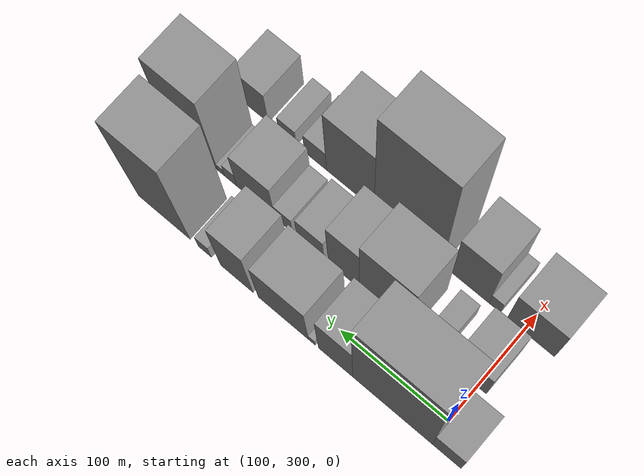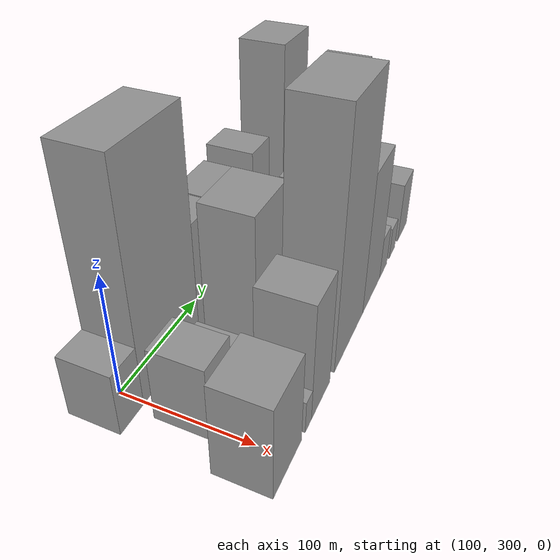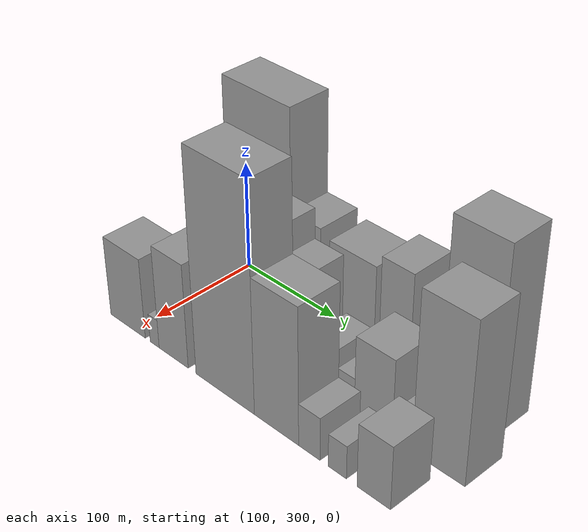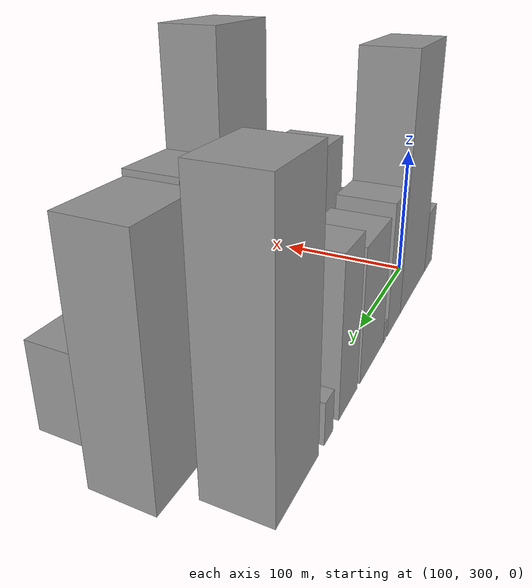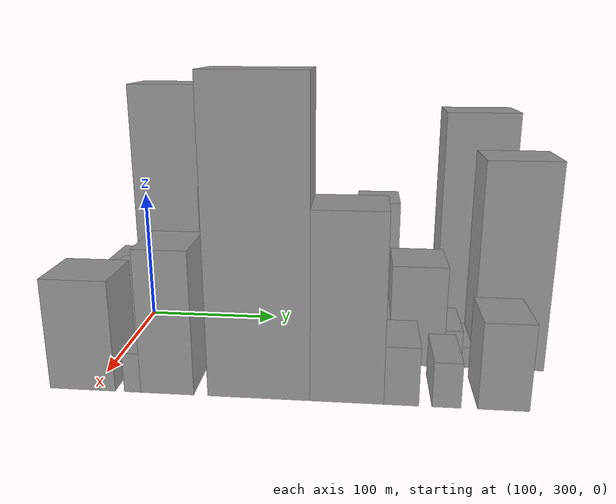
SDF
<sdf version="1.6">
 <world name="default">
  <model name="building_26">
   <static>1</static>
   <pose>100.0000 285.0551 0 0.000000 0.000000 0.000000</pose>
   <link name="link">
    <pose>0 0 25.50 0 0 0</pose>
    <collision name="collision"><geometry><box><size>40.0000 25.9128 51.0000</size></box></geometry></collision>
    <visual name="visual">
     <cast_shadows>0</cast_shadows>
     <geometry><box><size>40.0000 25.9128 51.0000</size></box></geometry>
     <material>
      <script>
       <uri>model://grey_wall/materials/scripts</uri>
       <uri>model://grey_wall/materials/textures</uri>
       <name>vrc/grey_wall</name>
      </script>
     </material>
    </visual>
   </link>
  </model>
  <model name="building_27">
   <static>1</static>
   <pose>100.0000 334.7470 0 0.000000 0.000000 0.000000</pose>
   <link name="link">
    <pose>0 0 93.00 0 0 0</pose>
    <collision name="collision"><geometry><box><size>40.0000 73.4709 186.0000</size></box></geometry></collision>
    <visual name="visual">
     <cast_shadows>0</cast_shadows>
     <geometry><box><size>40.0000 73.4709 186.0000</size></box></geometry>
     <material>
      <script>
       <uri>model://grey_wall/materials/scripts</uri>
       <uri>model://grey_wall/materials/textures</uri>
       <name>vrc/grey_wall</name>
      </script>
     </material>
    </visual>
   </link>
  </model>
  <model name="building_28">
   <static>1</static>
   <pose>100.0000 387.5578 0 0.000000 0.000000 0.000000</pose>
   <link name="link">
    <pose>0 0 48.00 0 0 0</pose>
    <collision name="collision"><geometry><box><size>40.0000 32.1508 96.0000</size></box></geometry></collision>
    <visual name="visual">
     <cast_shadows>0</cast_shadows>
     <geometry><box><size>40.0000 32.1508 96.0000</size></box></geometry>
     <material>
      <script>
       <uri>model://grey_wall/materials/scripts</uri>
       <uri>model://grey_wall/materials/textures</uri>
       <name>vrc/grey_wall</name>
      </script>
     </material>
    </visual>
   </link>
  </model>
  <model name="building_29">
   <static>1</static>
   <pose>100.0000 409.8102 0 0.000000 0.000000 0.000000</pose>
   <link name="link">
    <pose>0 0 7.50 0 0 0</pose>
    <collision name="collision"><geometry><box><size>40.0000 6.3538 15.0000</size></box></geometry></collision>
    <visual name="visual">
     <cast_shadows>0</cast_shadows>
     <geometry><box><size>40.0000 6.3538 15.0000</size></box></geometry>
     <material>
      <script>
       <uri>model://grey_wall/materials/scripts</uri>
       <uri>model://grey_wall/materials/textures</uri>
       <name>vrc/grey_wall</name>
      </script>
     </material>
    </visual>
   </link>
  </model>
  <model name="building_30">
   <static>1</static>
   <pose>100.0000 436.9131 0 0.000000 0.000000 0.000000</pose>
   <link name="link">
    <pose>0 0 45.00 0 0 0</pose>
    <collision name="collision"><geometry><box><size>40.0000 47.8520 90.0000</size></box></geometry></collision>
    <visual name="visual">
     <cast_shadows>0</cast_shadows>
     <geometry><box><size>40.0000 47.8520 90.0000</size></box></geometry>
     <material>
      <script>
       <uri>model://grey_wall/materials/scripts</uri>
       <uri>model://grey_wall/materials/textures</uri>
       <name>vrc/grey_wall</name>
      </script>
     </material>
    </visual>
   </link>
  </model>
  <model name="building_31">
   <static>1</static>
   <pose>100.0000 481.4354 0 0.000000 0.000000 0.000000</pose>
   <link name="link">
    <pose>0 0 51.00 0 0 0</pose>
    <collision name="collision"><geometry><box><size>40.0000 31.1927 102.0000</size></box></geometry></collision>
    <visual name="visual">
     <cast_shadows>0</cast_shadows>
     <geometry><box><size>40.0000 31.1927 102.0000</size></box></geometry>
     <material>
      <script>
       <uri>model://grey_wall/materials/scripts</uri>
       <uri>model://grey_wall/materials/textures</uri>
       <name>vrc/grey_wall</name>
      </script>
     </material>
    </visual>
   </link>
  </model>
  <model name="building_32">
   <static>1</static>
   <pose>100.0000 512.4188 0 0.000000 0.000000 0.000000</pose>
   <link name="link">
    <pose>0 0 13.50 0 0 0</pose>
    <collision name="collision"><geometry><box><size>40.0000 12.7741 27.0000</size></box></geometry></collision>
    <visual name="visual">
     <cast_shadows>0</cast_shadows>
     <geometry><box><size>40.0000 12.7741 27.0000</size></box></geometry>
     <material>
      <script>
       <uri>model://grey_wall/materials/scripts</uri>
       <uri>model://grey_wall/materials/textures</uri>
       <name>vrc/grey_wall</name>
      </script>
     </material>
    </visual>
   </link>
  </model>
  <model name="building_33">
   <static>1</static>
   <pose>100.0000 552.2329 0 0.000000 0.000000 0.000000</pose>
   <link name="link">
    <pose>0 0 84.00 0 0 0</pose>
    <collision name="collision"><geometry><box><size>40.0000 50.8540 168.0000</size></box></geometry></collision>
    <visual name="visual">
     <cast_shadows>0</cast_shadows>
     <geometry><box><size>40.0000 50.8540 168.0000</size></box></geometry>
     <material>
      <script>
       <uri>model://grey_wall/materials/scripts</uri>
       <uri>model://grey_wall/materials/textures</uri>
       <name>vrc/grey_wall</name>
      </script>
     </material>
    </visual>
   </link>
  </model>
  <model name="building_62">
   <static>1</static>
   <pose>152.0000 307.4061 0 0.000000 0.000000 0.000000</pose>
   <link name="link">
    <pose>0 0 30.00 0 0 0</pose>
    <collision name="collision"><geometry><box><size>40.0000 31.4088 60.0000</size></box></geometry></collision>
    <visual name="visual">
     <cast_shadows>0</cast_shadows>
     <geometry><box><size>40.0000 31.4088 60.0000</size></box></geometry>
     <material>
      <script>
       <uri>model://grey_wall/materials/scripts</uri>
       <uri>model://grey_wall/materials/textures</uri>
       <name>vrc/grey_wall</name>
      </script>
     </material>
    </visual>
   </link>
  </model>
  <model name="building_63">
   <static>1</static>
   <pose>152.0000 341.8757 0 0.000000 0.000000 0.000000</pose>
   <link name="link">
    <pose>0 0 16.50 0 0 0</pose>
    <collision name="collision"><geometry><box><size>40.0000 17.5305 33.0000</size></box></geometry></collision>
    <visual name="visual">
     <cast_shadows>0</cast_shadows>
     <geometry><box><size>40.0000 17.5305 33.0000</size></box></geometry>
     <material>
      <script>
       <uri>model://grey_wall/materials/scripts</uri>
       <uri>model://grey_wall/materials/textures</uri>
       <name>vrc/grey_wall</name>
      </script>
     </material>
    </visual>
   </link>
  </model>
  <model name="building_64">
   <static>1</static>
   <pose>152.0000 385.1507 0 0.000000 0.000000 0.000000</pose>
   <link name="link">
    <pose>0 0 61.50 0 0 0</pose>
    <collision name="collision"><geometry><box><size>40.0000 49.0194 123.0000</size></box></geometry></collision>
    <visual name="visual">
     <cast_shadows>0</cast_shadows>
     <geometry><box><size>40.0000 49.0194 123.0000</size></box></geometry>
     <material>
      <script>
       <uri>model://grey_wall/materials/scripts</uri>
       <uri>model://grey_wall/materials/textures</uri>
       <name>vrc/grey_wall</name>
      </script>
     </material>
    </visual>
   </link>
  </model>
  <model name="building_65">
   <static>1</static>
   <pose>152.0000 424.3583 0 0.000000 0.000000 0.000000</pose>
   <link name="link">
    <pose>0 0 48.00 0 0 0</pose>
    <collision name="collision"><geometry><box><size>40.0000 29.3959 96.0000</size></box></geometry></collision>
    <visual name="visual">
     <cast_shadows>0</cast_shadows>
     <geometry><box><size>40.0000 29.3959 96.0000</size></box></geometry>
     <material>
      <script>
       <uri>model://grey_wall/materials/scripts</uri>
       <uri>model://grey_wall/materials/textures</uri>
       <name>vrc/grey_wall</name>
      </script>
     </material>
    </visual>
   </link>
  </model>
  <model name="building_66">
   <static>1</static>
   <pose>152.0000 456.0876 0 0.000000 0.000000 0.000000</pose>
   <link name="link">
    <pose>0 0 22.50 0 0 0</pose>
    <collision name="collision"><geometry><box><size>40.0000 26.0627 45.0000</size></box></geometry></collision>
    <visual name="visual">
     <cast_shadows>0</cast_shadows>
     <geometry><box><size>40.0000 26.0627 45.0000</size></box></geometry>
     <material>
      <script>
       <uri>model://grey_wall/materials/scripts</uri>
       <uri>model://grey_wall/materials/textures</uri>
       <name>vrc/grey_wall</name>
      </script>
     </material>
    </visual>
   </link>
  </model>
  <model name="building_67">
   <static>1</static>
   <pose>152.0000 481.7140 0 0.000000 0.000000 0.000000</pose>
   <link name="link">
    <pose>0 0 16.50 0 0 0</pose>
    <collision name="collision"><geometry><box><size>40.0000 17.1900 33.0000</size></box></geometry></collision>
    <visual name="visual">
     <cast_shadows>0</cast_shadows>
     <geometry><box><size>40.0000 17.1900 33.0000</size></box></geometry>
     <material>
      <script>
       <uri>model://grey_wall/materials/scripts</uri>
       <uri>model://grey_wall/materials/textures</uri>
       <name>vrc/grey_wall</name>
      </script>
     </material>
    </visual>
   </link>
  </model>
  <model name="building_68">
   <static>1</static>
   <pose>152.0000 508.9699 0 0.000000 0.000000 0.000000</pose>
   <link name="link">
    <pose>0 0 36.00 0 0 0</pose>
    <collision name="collision"><geometry><box><size>40.0000 37.3218 72.0000</size></box></geometry></collision>
    <visual name="visual">
     <cast_shadows>0</cast_shadows>
     <geometry><box><size>40.0000 37.3218 72.0000</size></box></geometry>
     <material>
      <script>
       <uri>model://grey_wall/materials/scripts</uri>
       <uri>model://grey_wall/materials/textures</uri>
       <name>vrc/grey_wall</name>
      </script>
     </material>
    </visual>
   </link>
  </model>
  <model name="building_69">
   <static>1</static>
   <pose>152.0000 533.5448 0 0.000000 0.000000 0.000000</pose>
   <link name="link">
    <pose>0 0 13.50 0 0 0</pose>
    <collision name="collision"><geometry><box><size>40.0000 11.8280 27.0000</size></box></geometry></collision>
    <visual name="visual">
     <cast_shadows>0</cast_shadows>
     <geometry><box><size>40.0000 11.8280 27.0000</size></box></geometry>
     <material>
      <script>
       <uri>model://grey_wall/materials/scripts</uri>
       <uri>model://grey_wall/materials/textures</uri>
       <name>vrc/grey_wall</name>
      </script>
     </material>
    </visual>
   </link>
  </model>
  <model name="building_70">
   <static>1</static>
   <pose>152.0000 542.9801 0 0.000000 0.000000 0.000000</pose>
   <link name="link">
    <pose>0 0 7.50 0 0 0</pose>
    <collision name="collision"><geometry><box><size>40.0000 7.0425 15.0000</size></box></geometry></collision>
    <visual name="visual">
     <cast_shadows>0</cast_shadows>
     <geometry><box><size>40.0000 7.0425 15.0000</size></box></geometry>
     <material>
      <script>
       <uri>model://grey_wall/materials/scripts</uri>
       <uri>model://grey_wall/materials/textures</uri>
       <name>vrc/grey_wall</name>
      </script>
     </material>
    </visual>
   </link>
  </model>
  <model name="building_71">
   <static>1</static>
   <pose>152.0000 570.5997 0 0.000000 0.000000 0.000000</pose>
   <link name="link">
    <pose>0 0 72.00 0 0 0</pose>
    <collision name="collision"><geometry><box><size>40.0000 48.1968 144.0000</size></box></geometry></collision>
    <visual name="visual">
     <cast_shadows>0</cast_shadows>
     <geometry><box><size>40.0000 48.1968 144.0000</size></box></geometry>
     <material>
      <script>
       <uri>model://grey_wall/materials/scripts</uri>
       <uri>model://grey_wall/materials/textures</uri>
       <name>vrc/grey_wall</name>
      </script>
     </material>
    </visual>
   </link>
  </model>
  <model name="building_94">
   <static>1</static>
   <pose>204.0000 293.0879 0 0.000000 0.000000 0.000000</pose>
   <link name="link">
    <pose>0 0 37.50 0 0 0</pose>
    <collision name="collision"><geometry><box><size>40.0000 43.3346 75.0000</size></box></geometry></collision>
    <visual name="visual">
     <cast_shadows>0</cast_shadows>
     <geometry><box><size>40.0000 43.3346 75.0000</size></box></geometry>
     <material>
      <script>
       <uri>model://grey_wall/materials/scripts</uri>
       <uri>model://grey_wall/materials/textures</uri>
       <name>vrc/grey_wall</name>
      </script>
     </material>
    </visual>
   </link>
  </model>
  <model name="building_95">
   <static>1</static>
   <pose>204.0000 326.1555 0 0.000000 0.000000 0.000000</pose>
   <link name="link">
    <pose>0 0 13.50 0 0 0</pose>
    <collision name="collision"><geometry><box><size>40.0000 10.8006 27.0000</size></box></geometry></collision>
    <visual name="visual">
     <cast_shadows>0</cast_shadows>
     <geometry><box><size>40.0000 10.8006 27.0000</size></box></geometry>
     <material>
      <script>
       <uri>model://grey_wall/materials/scripts</uri>
       <uri>model://grey_wall/materials/textures</uri>
       <name>vrc/grey_wall</name>
      </script>
     </material>
    </visual>
   </link>
  </model>
  <model name="building_96">
   <static>1</static>
   <pose>204.0000 348.7719 0 0.000000 0.000000 0.000000</pose>
   <link name="link">
    <pose>0 0 48.00 0 0 0</pose>
    <collision name="collision"><geometry><box><size>40.0000 34.4322 96.0000</size></box></geometry></collision>
    <visual name="visual">
     <cast_shadows>0</cast_shadows>
     <geometry><box><size>40.0000 34.4322 96.0000</size></box></geometry>
     <material>
      <script>
       <uri>model://grey_wall/materials/scripts</uri>
       <uri>model://grey_wall/materials/textures</uri>
       <name>vrc/grey_wall</name>
      </script>
     </material>
    </visual>
   </link>
  </model>
  <model name="building_97">
   <static>1</static>
   <pose>204.0000 407.3665 0 0.000000 0.000000 0.000000</pose>
   <link name="link">
    <pose>0 0 100.50 0 0 0</pose>
    <collision name="collision"><geometry><box><size>40.0000 64.7571 201.0000</size></box></geometry></collision>
    <visual name="visual">
     <cast_shadows>0</cast_shadows>
     <geometry><box><size>40.0000 64.7571 201.0000</size></box></geometry>
     <material>
      <script>
       <uri>model://grey_wall/materials/scripts</uri>
       <uri>model://grey_wall/materials/textures</uri>
       <name>vrc/grey_wall</name>
      </script>
     </material>
    </visual>
   </link>
  </model>
  <model name="building_98">
   <static>1</static>
   <pose>204.0000 462.6557 0 0.000000 0.000000 0.000000</pose>
   <link name="link">
    <pose>0 0 61.50 0 0 0</pose>
    <collision name="collision"><geometry><box><size>40.0000 45.8212 123.0000</size></box></geometry></collision>
    <visual name="visual">
     <cast_shadows>0</cast_shadows>
     <geometry><box><size>40.0000 45.8212 123.0000</size></box></geometry>
     <material>
      <script>
       <uri>model://grey_wall/materials/scripts</uri>
       <uri>model://grey_wall/materials/textures</uri>
       <name>vrc/grey_wall</name>
      </script>
     </material>
    </visual>
   </link>
  </model>
  <model name="building_99">
   <static>1</static>
   <pose>204.0000 496.2481 0 0.000000 0.000000 0.000000</pose>
   <link name="link">
    <pose>0 0 19.50 0 0 0</pose>
    <collision name="collision"><geometry><box><size>40.0000 21.3638 39.0000</size></box></geometry></collision>
    <visual name="visual">
     <cast_shadows>0</cast_shadows>
     <geometry><box><size>40.0000 21.3638 39.0000</size></box></geometry>
     <material>
      <script>
       <uri>model://grey_wall/materials/scripts</uri>
       <uri>model://grey_wall/materials/textures</uri>
       <name>vrc/grey_wall</name>
      </script>
     </material>
    </visual>
   </link>
  </model>
  <model name="building_100">
   <static>1</static>
   <pose>204.0000 523.6962 0 0.000000 0.000000 0.000000</pose>
   <link name="link">
    <pose>0 0 15.00 0 0 0</pose>
    <collision name="collision"><geometry><box><size>40.0000 17.5324 30.0000</size></box></geometry></collision>
    <visual name="visual">
     <cast_shadows>0</cast_shadows>
     <geometry><box><size>40.0000 17.5324 30.0000</size></box></geometry>
     <material>
      <script>
       <uri>model://grey_wall/materials/scripts</uri>
       <uri>model://grey_wall/materials/textures</uri>
       <name>vrc/grey_wall</name>
      </script>
     </material>
    </visual>
   </link>
  </model>
  <model name="building_101">
   <static>1</static>
   <pose>204.0000 557.9509 0 0.000000 0.000000 0.000000</pose>
   <link name="link">
    <pose>0 0 28.50 0 0 0</pose>
    <collision name="collision"><geometry><box><size>40.0000 30.9769 57.0000</size></box></geometry></collision>
    <visual name="visual">
     <cast_shadows>0</cast_shadows>
     <geometry><box><size>40.0000 30.9769 57.0000</size></box></geometry>
     <material>
      <script>
       <uri>model://grey_wall/materials/scripts</uri>
       <uri>model://grey_wall/materials/textures</uri>
       <name>vrc/grey_wall</name>
      </script>
     </material>
    </visual>
   </link>
  </model>
 </world>
</sdf>
